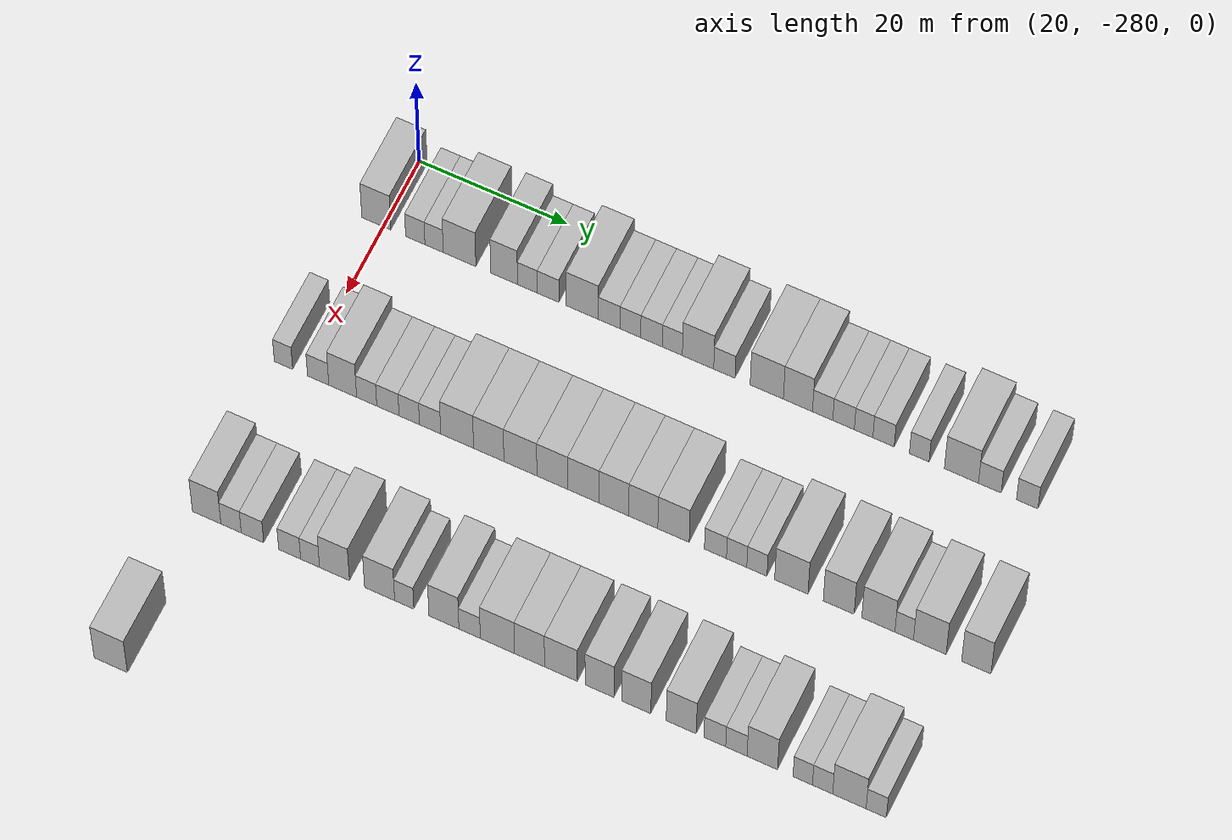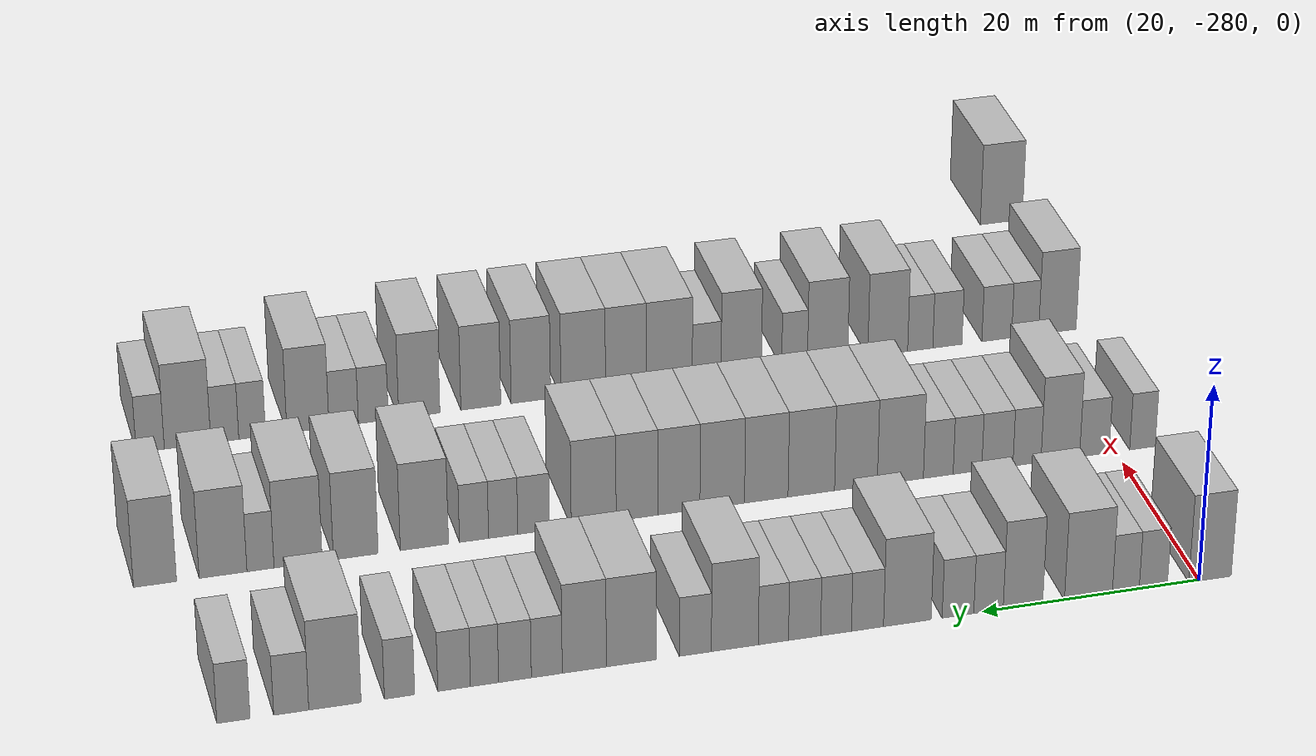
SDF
<sdf version="1.6">
 <world name="default">
  <model name="building_25">
   <static>1</static>
   <pose>25.0000 -280.9960 0 0.000000 0.000000 0.000000</pose>
   <link name="link">
    <pose>0 0 4.50 0 0 0</pose>
    <collision name="collision"><geometry><box><size>10.0000 3.9435 9.0000</size></box></geometry></collision>
    <visual name="visual">
     <cast_shadows>0</cast_shadows>
     <geometry><box><size>10.0000 3.9435 9.0000</size></box></geometry>
     <material>
      <script>
       <uri>model://HANNAS_wall/materials/scripts</uri>
       <uri>model://HANNAS_wall/materials/textures</uri>
       <name>vrc/HANNAS_wall</name>
      </script>
     </material>
    </visual>
   </link>
  </model>
  <model name="building_26">
   <static>1</static>
   <pose>25.0000 -275.7177 0 0.000000 0.000000 0.000000</pose>
   <link name="link">
    <pose>0 0 3.00 0 0 0</pose>
    <collision name="collision"><geometry><box><size>10.0000 2.6130 6.0000</size></box></geometry></collision>
    <visual name="visual">
     <cast_shadows>0</cast_shadows>
     <geometry><box><size>10.0000 2.6130 6.0000</size></box></geometry>
     <material>
      <script>
       <uri>model://HANNAS_wall/materials/scripts</uri>
       <uri>model://HANNAS_wall/materials/textures</uri>
       <name>vrc/HANNAS_wall</name>
      </script>
     </material>
    </visual>
   </link>
  </model>
  <model name="building_27">
   <static>1</static>
   <pose>25.0000 -273.1705 0 0.000000 0.000000 0.000000</pose>
   <link name="link">
    <pose>0 0 3.00 0 0 0</pose>
    <collision name="collision"><geometry><box><size>10.0000 2.4816 6.0000</size></box></geometry></collision>
    <visual name="visual">
     <cast_shadows>0</cast_shadows>
     <geometry><box><size>10.0000 2.4816 6.0000</size></box></geometry>
     <material>
      <script>
       <uri>model://HANNAS_wall/materials/scripts</uri>
       <uri>model://HANNAS_wall/materials/textures</uri>
       <name>vrc/HANNAS_wall</name>
      </script>
     </material>
    </visual>
   </link>
  </model>
  <model name="building_28">
   <static>1</static>
   <pose>25.0000 -269.7255 0 0.000000 0.000000 0.000000</pose>
   <link name="link">
    <pose>0 0 4.50 0 0 0</pose>
    <collision name="collision"><geometry><box><size>10.0000 4.4084 9.0000</size></box></geometry></collision>
    <visual name="visual">
     <cast_shadows>0</cast_shadows>
     <geometry><box><size>10.0000 4.4084 9.0000</size></box></geometry>
     <material>
      <script>
       <uri>model://HANNAS_wall/materials/scripts</uri>
       <uri>model://HANNAS_wall/materials/textures</uri>
       <name>vrc/HANNAS_wall</name>
      </script>
     </material>
    </visual>
   </link>
  </model>
  <model name="building_29">
   <static>1</static>
   <pose>25.0000 -263.7133 0 0.000000 0.000000 0.000000</pose>
   <link name="link">
    <pose>0 0 4.50 0 0 0</pose>
    <collision name="collision"><geometry><box><size>10.0000 3.6160 9.0000</size></box></geometry></collision>
    <visual name="visual">
     <cast_shadows>0</cast_shadows>
     <geometry><box><size>10.0000 3.6160 9.0000</size></box></geometry>
     <material>
      <script>
       <uri>model://HANNAS_wall/materials/scripts</uri>
       <uri>model://HANNAS_wall/materials/textures</uri>
       <name>vrc/HANNAS_wall</name>
      </script>
     </material>
    </visual>
   </link>
  </model>
  <model name="building_30">
   <static>1</static>
   <pose>25.0000 -260.5666 0 0.000000 0.000000 0.000000</pose>
   <link name="link">
    <pose>0 0 3.00 0 0 0</pose>
    <collision name="collision"><geometry><box><size>10.0000 2.6774 6.0000</size></box></geometry></collision>
    <visual name="visual">
     <cast_shadows>0</cast_shadows>
     <geometry><box><size>10.0000 2.6774 6.0000</size></box></geometry>
     <material>
      <script>
       <uri>model://HANNAS_wall/materials/scripts</uri>
       <uri>model://HANNAS_wall/materials/textures</uri>
       <name>vrc/HANNAS_wall</name>
      </script>
     </material>
    </visual>
   </link>
  </model>
  <model name="building_31">
   <static>1</static>
   <pose>25.0000 -257.7888 0 0.000000 0.000000 0.000000</pose>
   <link name="link">
    <pose>0 0 3.00 0 0 0</pose>
    <collision name="collision"><geometry><box><size>10.0000 2.8781 6.0000</size></box></geometry></collision>
    <visual name="visual">
     <cast_shadows>0</cast_shadows>
     <geometry><box><size>10.0000 2.8781 6.0000</size></box></geometry>
     <material>
      <script>
       <uri>model://HANNAS_wall/materials/scripts</uri>
       <uri>model://HANNAS_wall/materials/textures</uri>
       <name>vrc/HANNAS_wall</name>
      </script>
     </material>
    </visual>
   </link>
  </model>
  <model name="building_32">
   <static>1</static>
   <pose>25.0000 -253.1978 0 0.000000 0.000000 0.000000</pose>
   <link name="link">
    <pose>0 0 4.50 0 0 0</pose>
    <collision name="collision"><geometry><box><size>10.0000 4.3039 9.0000</size></box></geometry></collision>
    <visual name="visual">
     <cast_shadows>0</cast_shadows>
     <geometry><box><size>10.0000 4.3039 9.0000</size></box></geometry>
     <material>
      <script>
       <uri>model://HANNAS_wall/materials/scripts</uri>
       <uri>model://HANNAS_wall/materials/textures</uri>
       <name>vrc/HANNAS_wall</name>
      </script>
     </material>
    </visual>
   </link>
  </model>
  <model name="building_33">
   <static>1</static>
   <pose>25.0000 -249.5986 0 0.000000 0.000000 0.000000</pose>
   <link name="link">
    <pose>0 0 3.00 0 0 0</pose>
    <collision name="collision"><geometry><box><size>10.0000 2.8944 6.0000</size></box></geometry></collision>
    <visual name="visual">
     <cast_shadows>0</cast_shadows>
     <geometry><box><size>10.0000 2.8944 6.0000</size></box></geometry>
     <material>
      <script>
       <uri>model://HANNAS_wall/materials/scripts</uri>
       <uri>model://HANNAS_wall/materials/textures</uri>
       <name>vrc/HANNAS_wall</name>
      </script>
     </material>
    </visual>
   </link>
  </model>
  <model name="building_34">
   <static>1</static>
   <pose>25.0000 -246.7691 0 0.000000 0.000000 0.000000</pose>
   <link name="link">
    <pose>0 0 3.00 0 0 0</pose>
    <collision name="collision"><geometry><box><size>10.0000 2.7646 6.0000</size></box></geometry></collision>
    <visual name="visual">
     <cast_shadows>0</cast_shadows>
     <geometry><box><size>10.0000 2.7646 6.0000</size></box></geometry>
     <material>
      <script>
       <uri>model://HANNAS_wall/materials/scripts</uri>
       <uri>model://HANNAS_wall/materials/textures</uri>
       <name>vrc/HANNAS_wall</name>
      </script>
     </material>
    </visual>
   </link>
  </model>
  <model name="building_35">
   <static>1</static>
   <pose>25.0000 -243.9515 0 0.000000 0.000000 0.000000</pose>
   <link name="link">
    <pose>0 0 3.00 0 0 0</pose>
    <collision name="collision"><geometry><box><size>10.0000 2.8706 6.0000</size></box></geometry></collision>
    <visual name="visual">
     <cast_shadows>0</cast_shadows>
     <geometry><box><size>10.0000 2.8706 6.0000</size></box></geometry>
     <material>
      <script>
       <uri>model://HANNAS_wall/materials/scripts</uri>
       <uri>model://HANNAS_wall/materials/textures</uri>
       <name>vrc/HANNAS_wall</name>
      </script>
     </material>
    </visual>
   </link>
  </model>
  <model name="building_36">
   <static>1</static>
   <pose>25.0000 -241.1703 0 0.000000 0.000000 0.000000</pose>
   <link name="link">
    <pose>0 0 3.00 0 0 0</pose>
    <collision name="collision"><geometry><box><size>10.0000 2.6919 6.0000</size></box></geometry></collision>
    <visual name="visual">
     <cast_shadows>0</cast_shadows>
     <geometry><box><size>10.0000 2.6919 6.0000</size></box></geometry>
     <material>
      <script>
       <uri>model://HANNAS_wall/materials/scripts</uri>
       <uri>model://HANNAS_wall/materials/textures</uri>
       <name>vrc/HANNAS_wall</name>
      </script>
     </material>
    </visual>
   </link>
  </model>
  <model name="building_37">
   <static>1</static>
   <pose>25.0000 -237.7380 0 0.000000 0.000000 0.000000</pose>
   <link name="link">
    <pose>0 0 4.50 0 0 0</pose>
    <collision name="collision"><geometry><box><size>10.0000 4.1728 9.0000</size></box></geometry></collision>
    <visual name="visual">
     <cast_shadows>0</cast_shadows>
     <geometry><box><size>10.0000 4.1728 9.0000</size></box></geometry>
     <material>
      <script>
       <uri>model://HANNAS_wall/materials/scripts</uri>
       <uri>model://HANNAS_wall/materials/textures</uri>
       <name>vrc/HANNAS_wall</name>
      </script>
     </material>
    </visual>
   </link>
  </model>
  <model name="building_38">
   <static>1</static>
   <pose>25.0000 -234.2288 0 0.000000 0.000000 0.000000</pose>
   <link name="link">
    <pose>0 0 3.00 0 0 0</pose>
    <collision name="collision"><geometry><box><size>10.0000 2.8456 6.0000</size></box></geometry></collision>
    <visual name="visual">
     <cast_shadows>0</cast_shadows>
     <geometry><box><size>10.0000 2.8456 6.0000</size></box></geometry>
     <material>
      <script>
       <uri>model://HANNAS_wall/materials/scripts</uri>
       <uri>model://HANNAS_wall/materials/textures</uri>
       <name>vrc/HANNAS_wall</name>
      </script>
     </material>
    </visual>
   </link>
  </model>
  <model name="building_39">
   <static>1</static>
   <pose>25.0000 -228.5989 0 0.000000 0.000000 0.000000</pose>
   <link name="link">
    <pose>0 0 4.50 0 0 0</pose>
    <collision name="collision"><geometry><box><size>10.0000 4.4142 9.0000</size></box></geometry></collision>
    <visual name="visual">
     <cast_shadows>0</cast_shadows>
     <geometry><box><size>10.0000 4.4142 9.0000</size></box></geometry>
     <material>
      <script>
       <uri>model://HANNAS_wall/materials/scripts</uri>
       <uri>model://HANNAS_wall/materials/textures</uri>
       <name>vrc/HANNAS_wall</name>
      </script>
     </material>
    </visual>
   </link>
  </model>
  <model name="building_40">
   <static>1</static>
   <pose>25.0000 -224.4616 0 0.000000 0.000000 0.000000</pose>
   <link name="link">
    <pose>0 0 4.50 0 0 0</pose>
    <collision name="collision"><geometry><box><size>10.0000 3.8603 9.0000</size></box></geometry></collision>
    <visual name="visual">
     <cast_shadows>0</cast_shadows>
     <geometry><box><size>10.0000 3.8603 9.0000</size></box></geometry>
     <material>
      <script>
       <uri>model://HANNAS_wall/materials/scripts</uri>
       <uri>model://HANNAS_wall/materials/textures</uri>
       <name>vrc/HANNAS_wall</name>
      </script>
     </material>
    </visual>
   </link>
  </model>
  <model name="building_41">
   <static>1</static>
   <pose>25.0000 -221.1838 0 0.000000 0.000000 0.000000</pose>
   <link name="link">
    <pose>0 0 3.00 0 0 0</pose>
    <collision name="collision"><geometry><box><size>10.0000 2.6952 6.0000</size></box></geometry></collision>
    <visual name="visual">
     <cast_shadows>0</cast_shadows>
     <geometry><box><size>10.0000 2.6952 6.0000</size></box></geometry>
     <material>
      <script>
       <uri>model://HANNAS_wall/materials/scripts</uri>
       <uri>model://HANNAS_wall/materials/textures</uri>
       <name>vrc/HANNAS_wall</name>
      </script>
     </material>
    </visual>
   </link>
  </model>
  <model name="building_42">
   <static>1</static>
   <pose>25.0000 -218.4141 0 0.000000 0.000000 0.000000</pose>
   <link name="link">
    <pose>0 0 3.00 0 0 0</pose>
    <collision name="collision"><geometry><box><size>10.0000 2.8441 6.0000</size></box></geometry></collision>
    <visual name="visual">
     <cast_shadows>0</cast_shadows>
     <geometry><box><size>10.0000 2.8441 6.0000</size></box></geometry>
     <material>
      <script>
       <uri>model://HANNAS_wall/materials/scripts</uri>
       <uri>model://HANNAS_wall/materials/textures</uri>
       <name>vrc/HANNAS_wall</name>
      </script>
     </material>
    </visual>
   </link>
  </model>
  <model name="building_43">
   <static>1</static>
   <pose>25.0000 -215.7694 0 0.000000 0.000000 0.000000</pose>
   <link name="link">
    <pose>0 0 3.00 0 0 0</pose>
    <collision name="collision"><geometry><box><size>10.0000 2.4454 6.0000</size></box></geometry></collision>
    <visual name="visual">
     <cast_shadows>0</cast_shadows>
     <geometry><box><size>10.0000 2.4454 6.0000</size></box></geometry>
     <material>
      <script>
       <uri>model://HANNAS_wall/materials/scripts</uri>
       <uri>model://HANNAS_wall/materials/textures</uri>
       <name>vrc/HANNAS_wall</name>
      </script>
     </material>
    </visual>
   </link>
  </model>
  <model name="building_44">
   <static>1</static>
   <pose>25.0000 -213.1386 0 0.000000 0.000000 0.000000</pose>
   <link name="link">
    <pose>0 0 3.00 0 0 0</pose>
    <collision name="collision"><geometry><box><size>10.0000 2.8161 6.0000</size></box></geometry></collision>
    <visual name="visual">
     <cast_shadows>0</cast_shadows>
     <geometry><box><size>10.0000 2.8161 6.0000</size></box></geometry>
     <material>
      <script>
       <uri>model://HANNAS_wall/materials/scripts</uri>
       <uri>model://HANNAS_wall/materials/textures</uri>
       <name>vrc/HANNAS_wall</name>
      </script>
     </material>
    </visual>
   </link>
  </model>
  <model name="building_45">
   <static>1</static>
   <pose>25.0000 -208.4304 0 0.000000 0.000000 0.000000</pose>
   <link name="link">
    <pose>0 0 3.00 0 0 0</pose>
    <collision name="collision"><geometry><box><size>10.0000 2.6004 6.0000</size></box></geometry></collision>
    <visual name="visual">
     <cast_shadows>0</cast_shadows>
     <geometry><box><size>10.0000 2.6004 6.0000</size></box></geometry>
     <material>
      <script>
       <uri>model://HANNAS_wall/materials/scripts</uri>
       <uri>model://HANNAS_wall/materials/textures</uri>
       <name>vrc/HANNAS_wall</name>
      </script>
     </material>
    </visual>
   </link>
  </model>
  <model name="building_46">
   <static>1</static>
   <pose>25.0000 -202.8944 0 0.000000 0.000000 0.000000</pose>
   <link name="link">
    <pose>0 0 4.50 0 0 0</pose>
    <collision name="collision"><geometry><box><size>10.0000 4.4716 9.0000</size></box></geometry></collision>
    <visual name="visual">
     <cast_shadows>0</cast_shadows>
     <geometry><box><size>10.0000 4.4716 9.0000</size></box></geometry>
     <material>
      <script>
       <uri>model://HANNAS_wall/materials/scripts</uri>
       <uri>model://HANNAS_wall/materials/textures</uri>
       <name>vrc/HANNAS_wall</name>
      </script>
     </material>
    </visual>
   </link>
  </model>
  <model name="building_47">
   <static>1</static>
   <pose>25.0000 -199.1657 0 0.000000 0.000000 0.000000</pose>
   <link name="link">
    <pose>0 0 3.00 0 0 0</pose>
    <collision name="collision"><geometry><box><size>10.0000 2.9857 6.0000</size></box></geometry></collision>
    <visual name="visual">
     <cast_shadows>0</cast_shadows>
     <geometry><box><size>10.0000 2.9857 6.0000</size></box></geometry>
     <material>
      <script>
       <uri>model://HANNAS_wall/materials/scripts</uri>
       <uri>model://HANNAS_wall/materials/textures</uri>
       <name>vrc/HANNAS_wall</name>
      </script>
     </material>
    </visual>
   </link>
  </model>
  <model name="building_48">
   <static>1</static>
   <pose>25.0000 -194.2675 0 0.000000 0.000000 0.000000</pose>
   <link name="link">
    <pose>0 0 3.00 0 0 0</pose>
    <collision name="collision"><geometry><box><size>10.0000 2.8106 6.0000</size></box></geometry></collision>
    <visual name="visual">
     <cast_shadows>0</cast_shadows>
     <geometry><box><size>10.0000 2.8106 6.0000</size></box></geometry>
     <material>
      <script>
       <uri>model://HANNAS_wall/materials/scripts</uri>
       <uri>model://HANNAS_wall/materials/textures</uri>
       <name>vrc/HANNAS_wall</name>
      </script>
     </material>
    </visual>
   </link>
  </model>
  <model name="building_224">
   <static>1</static>
   <pose>47.0000 -282.5745 0 0.000000 0.000000 0.000000</pose>
   <link name="link">
    <pose>0 0 3.00 0 0 0</pose>
    <collision name="collision"><geometry><box><size>10.0000 2.4802 6.0000</size></box></geometry></collision>
    <visual name="visual">
     <cast_shadows>0</cast_shadows>
     <geometry><box><size>10.0000 2.4802 6.0000</size></box></geometry>
     <material>
      <script>
       <uri>model://HANNAS_wall/materials/scripts</uri>
       <uri>model://HANNAS_wall/materials/textures</uri>
       <name>vrc/HANNAS_wall</name>
      </script>
     </material>
    </visual>
   </link>
  </model>
  <model name="building_225">
   <static>1</static>
   <pose>47.0000 -277.9046 0 0.000000 0.000000 0.000000</pose>
   <link name="link">
    <pose>0 0 3.00 0 0 0</pose>
    <collision name="collision"><geometry><box><size>10.0000 2.8594 6.0000</size></box></geometry></collision>
    <visual name="visual">
     <cast_shadows>0</cast_shadows>
     <geometry><box><size>10.0000 2.8594 6.0000</size></box></geometry>
     <material>
      <script>
       <uri>model://HANNAS_wall/materials/scripts</uri>
       <uri>model://HANNAS_wall/materials/textures</uri>
       <name>vrc/HANNAS_wall</name>
      </script>
     </material>
    </visual>
   </link>
  </model>
  <model name="building_226">
   <static>1</static>
   <pose>47.0000 -274.6054 0 0.000000 0.000000 0.000000</pose>
   <link name="link">
    <pose>0 0 4.50 0 0 0</pose>
    <collision name="collision"><geometry><box><size>10.0000 3.7390 9.0000</size></box></geometry></collision>
    <visual name="visual">
     <cast_shadows>0</cast_shadows>
     <geometry><box><size>10.0000 3.7390 9.0000</size></box></geometry>
     <material>
      <script>
       <uri>model://HANNAS_wall/materials/scripts</uri>
       <uri>model://HANNAS_wall/materials/textures</uri>
       <name>vrc/HANNAS_wall</name>
      </script>
     </material>
    </visual>
   </link>
  </model>
  <model name="building_227">
   <static>1</static>
   <pose>47.0000 -271.3867 0 0.000000 0.000000 0.000000</pose>
   <link name="link">
    <pose>0 0 3.00 0 0 0</pose>
    <collision name="collision"><geometry><box><size>10.0000 2.6985 6.0000</size></box></geometry></collision>
    <visual name="visual">
     <cast_shadows>0</cast_shadows>
     <geometry><box><size>10.0000 2.6985 6.0000</size></box></geometry>
     <material>
      <script>
       <uri>model://HANNAS_wall/materials/scripts</uri>
       <uri>model://HANNAS_wall/materials/textures</uri>
       <name>vrc/HANNAS_wall</name>
      </script>
     </material>
    </visual>
   </link>
  </model>
  <model name="building_228">
   <static>1</static>
   <pose>47.0000 -268.5423 0 0.000000 0.000000 0.000000</pose>
   <link name="link">
    <pose>0 0 3.00 0 0 0</pose>
    <collision name="collision"><geometry><box><size>10.0000 2.9903 6.0000</size></box></geometry></collision>
    <visual name="visual">
     <cast_shadows>0</cast_shadows>
     <geometry><box><size>10.0000 2.9903 6.0000</size></box></geometry>
     <material>
      <script>
       <uri>model://HANNAS_wall/materials/scripts</uri>
       <uri>model://HANNAS_wall/materials/textures</uri>
       <name>vrc/HANNAS_wall</name>
      </script>
     </material>
    </visual>
   </link>
  </model>
  <model name="building_229">
   <static>1</static>
   <pose>47.0000 -265.6804 0 0.000000 0.000000 0.000000</pose>
   <link name="link">
    <pose>0 0 3.00 0 0 0</pose>
    <collision name="collision"><geometry><box><size>10.0000 2.7334 6.0000</size></box></geometry></collision>
    <visual name="visual">
     <cast_shadows>0</cast_shadows>
     <geometry><box><size>10.0000 2.7334 6.0000</size></box></geometry>
     <material>
      <script>
       <uri>model://HANNAS_wall/materials/scripts</uri>
       <uri>model://HANNAS_wall/materials/textures</uri>
       <name>vrc/HANNAS_wall</name>
      </script>
     </material>
    </visual>
   </link>
  </model>
  <model name="building_230">
   <static>1</static>
   <pose>47.0000 -262.8913 0 0.000000 0.000000 0.000000</pose>
   <link name="link">
    <pose>0 0 3.00 0 0 0</pose>
    <collision name="collision"><geometry><box><size>10.0000 2.8448 6.0000</size></box></geometry></collision>
    <visual name="visual">
     <cast_shadows>0</cast_shadows>
     <geometry><box><size>10.0000 2.8448 6.0000</size></box></geometry>
     <material>
      <script>
       <uri>model://HANNAS_wall/materials/scripts</uri>
       <uri>model://HANNAS_wall/materials/textures</uri>
       <name>vrc/HANNAS_wall</name>
      </script>
     </material>
    </visual>
   </link>
  </model>
  <model name="building_231">
   <static>1</static>
   <pose>47.0000 -259.2773 0 0.000000 0.000000 0.000000</pose>
   <link name="link">
    <pose>0 0 4.50 0 0 0</pose>
    <collision name="collision"><geometry><box><size>10.0000 4.3831 9.0000</size></box></geometry></collision>
    <visual name="visual">
     <cast_shadows>0</cast_shadows>
     <geometry><box><size>10.0000 4.3831 9.0000</size></box></geometry>
     <material>
      <script>
       <uri>model://HANNAS_wall/materials/scripts</uri>
       <uri>model://HANNAS_wall/materials/textures</uri>
       <name>vrc/HANNAS_wall</name>
      </script>
     </material>
    </visual>
   </link>
  </model>
  <model name="building_232">
   <static>1</static>
   <pose>47.0000 -255.0653 0 0.000000 0.000000 0.000000</pose>
   <link name="link">
    <pose>0 0 4.50 0 0 0</pose>
    <collision name="collision"><geometry><box><size>10.0000 4.0408 9.0000</size></box></geometry></collision>
    <visual name="visual">
     <cast_shadows>0</cast_shadows>
     <geometry><box><size>10.0000 4.0408 9.0000</size></box></geometry>
     <material>
      <script>
       <uri>model://HANNAS_wall/materials/scripts</uri>
       <uri>model://HANNAS_wall/materials/textures</uri>
       <name>vrc/HANNAS_wall</name>
      </script>
     </material>
    </visual>
   </link>
  </model>
  <model name="building_233">
   <static>1</static>
   <pose>47.0000 -250.8517 0 0.000000 0.000000 0.000000</pose>
   <link name="link">
    <pose>0 0 4.50 0 0 0</pose>
    <collision name="collision"><geometry><box><size>10.0000 4.3865 9.0000</size></box></geometry></collision>
    <visual name="visual">
     <cast_shadows>0</cast_shadows>
     <geometry><box><size>10.0000 4.3865 9.0000</size></box></geometry>
     <material>
      <script>
       <uri>model://HANNAS_wall/materials/scripts</uri>
       <uri>model://HANNAS_wall/materials/textures</uri>
       <name>vrc/HANNAS_wall</name>
      </script>
     </material>
    </visual>
   </link>
  </model>
  <model name="building_234">
   <static>1</static>
   <pose>47.0000 -246.6205 0 0.000000 0.000000 0.000000</pose>
   <link name="link">
    <pose>0 0 4.50 0 0 0</pose>
    <collision name="collision"><geometry><box><size>10.0000 4.0758 9.0000</size></box></geometry></collision>
    <visual name="visual">
     <cast_shadows>0</cast_shadows>
     <geometry><box><size>10.0000 4.0758 9.0000</size></box></geometry>
     <material>
      <script>
       <uri>model://HANNAS_wall/materials/scripts</uri>
       <uri>model://HANNAS_wall/materials/textures</uri>
       <name>vrc/HANNAS_wall</name>
      </script>
     </material>
    </visual>
   </link>
  </model>
  <model name="building_235">
   <static>1</static>
   <pose>47.0000 -242.4970 0 0.000000 0.000000 0.000000</pose>
   <link name="link">
    <pose>0 0 4.50 0 0 0</pose>
    <collision name="collision"><geometry><box><size>10.0000 4.1711 9.0000</size></box></geometry></collision>
    <visual name="visual">
     <cast_shadows>0</cast_shadows>
     <geometry><box><size>10.0000 4.1711 9.0000</size></box></geometry>
     <material>
      <script>
       <uri>model://HANNAS_wall/materials/scripts</uri>
       <uri>model://HANNAS_wall/materials/textures</uri>
       <name>vrc/HANNAS_wall</name>
      </script>
     </material>
    </visual>
   </link>
  </model>
  <model name="building_236">
   <static>1</static>
   <pose>47.0000 -238.4474 0 0.000000 0.000000 0.000000</pose>
   <link name="link">
    <pose>0 0 4.50 0 0 0</pose>
    <collision name="collision"><geometry><box><size>10.0000 3.9280 9.0000</size></box></geometry></collision>
    <visual name="visual">
     <cast_shadows>0</cast_shadows>
     <geometry><box><size>10.0000 3.9280 9.0000</size></box></geometry>
     <material>
      <script>
       <uri>model://HANNAS_wall/materials/scripts</uri>
       <uri>model://HANNAS_wall/materials/textures</uri>
       <name>vrc/HANNAS_wall</name>
      </script>
     </material>
    </visual>
   </link>
  </model>
  <model name="building_237">
   <static>1</static>
   <pose>47.0000 -234.5632 0 0.000000 0.000000 0.000000</pose>
   <link name="link">
    <pose>0 0 4.50 0 0 0</pose>
    <collision name="collision"><geometry><box><size>10.0000 3.8406 9.0000</size></box></geometry></collision>
    <visual name="visual">
     <cast_shadows>0</cast_shadows>
     <geometry><box><size>10.0000 3.8406 9.0000</size></box></geometry>
     <material>
      <script>
       <uri>model://HANNAS_wall/materials/scripts</uri>
       <uri>model://HANNAS_wall/materials/textures</uri>
       <name>vrc/HANNAS_wall</name>
      </script>
     </material>
    </visual>
   </link>
  </model>
  <model name="building_238">
   <static>1</static>
   <pose>47.0000 -230.5738 0 0.000000 0.000000 0.000000</pose>
   <link name="link">
    <pose>0 0 4.50 0 0 0</pose>
    <collision name="collision"><geometry><box><size>10.0000 4.1381 9.0000</size></box></geometry></collision>
    <visual name="visual">
     <cast_shadows>0</cast_shadows>
     <geometry><box><size>10.0000 4.1381 9.0000</size></box></geometry>
     <material>
      <script>
       <uri>model://HANNAS_wall/materials/scripts</uri>
       <uri>model://HANNAS_wall/materials/textures</uri>
       <name>vrc/HANNAS_wall</name>
      </script>
     </material>
    </visual>
   </link>
  </model>
  <model name="building_239">
   <static>1</static>
   <pose>47.0000 -225.0542 0 0.000000 0.000000 0.000000</pose>
   <link name="link">
    <pose>0 0 3.00 0 0 0</pose>
    <collision name="collision"><geometry><box><size>10.0000 2.9010 6.0000</size></box></geometry></collision>
    <visual name="visual">
     <cast_shadows>0</cast_shadows>
     <geometry><box><size>10.0000 2.9010 6.0000</size></box></geometry>
     <material>
      <script>
       <uri>model://HANNAS_wall/materials/scripts</uri>
       <uri>model://HANNAS_wall/materials/textures</uri>
       <name>vrc/HANNAS_wall</name>
      </script>
     </material>
    </visual>
   </link>
  </model>
  <model name="building_240">
   <static>1</static>
   <pose>47.0000 -222.2689 0 0.000000 0.000000 0.000000</pose>
   <link name="link">
    <pose>0 0 3.00 0 0 0</pose>
    <collision name="collision"><geometry><box><size>10.0000 2.6696 6.0000</size></box></geometry></collision>
    <visual name="visual">
     <cast_shadows>0</cast_shadows>
     <geometry><box><size>10.0000 2.6696 6.0000</size></box></geometry>
     <material>
      <script>
       <uri>model://HANNAS_wall/materials/scripts</uri>
       <uri>model://HANNAS_wall/materials/textures</uri>
       <name>vrc/HANNAS_wall</name>
      </script>
     </material>
    </visual>
   </link>
  </model>
  <model name="building_241">
   <static>1</static>
   <pose>47.0000 -219.6069 0 0.000000 0.000000 0.000000</pose>
   <link name="link">
    <pose>0 0 3.00 0 0 0</pose>
    <collision name="collision"><geometry><box><size>10.0000 2.6545 6.0000</size></box></geometry></collision>
    <visual name="visual">
     <cast_shadows>0</cast_shadows>
     <geometry><box><size>10.0000 2.6545 6.0000</size></box></geometry>
     <material>
      <script>
       <uri>model://HANNAS_wall/materials/scripts</uri>
       <uri>model://HANNAS_wall/materials/textures</uri>
       <name>vrc/HANNAS_wall</name>
      </script>
     </material>
    </visual>
   </link>
  </model>
  <model name="building_242">
   <static>1</static>
   <pose>47.0000 -215.0941 0 0.000000 0.000000 0.000000</pose>
   <link name="link">
    <pose>0 0 4.50 0 0 0</pose>
    <collision name="collision"><geometry><box><size>10.0000 4.3712 9.0000</size></box></geometry></collision>
    <visual name="visual">
     <cast_shadows>0</cast_shadows>
     <geometry><box><size>10.0000 4.3712 9.0000</size></box></geometry>
     <material>
      <script>
       <uri>model://HANNAS_wall/materials/scripts</uri>
       <uri>model://HANNAS_wall/materials/textures</uri>
       <name>vrc/HANNAS_wall</name>
      </script>
     </material>
    </visual>
   </link>
  </model>
  <model name="building_243">
   <static>1</static>
   <pose>47.0000 -208.8919 0 0.000000 0.000000 0.000000</pose>
   <link name="link">
    <pose>0 0 4.50 0 0 0</pose>
    <collision name="collision"><geometry><box><size>10.0000 4.0332 9.0000</size></box></geometry></collision>
    <visual name="visual">
     <cast_shadows>0</cast_shadows>
     <geometry><box><size>10.0000 4.0332 9.0000</size></box></geometry>
     <material>
      <script>
       <uri>model://HANNAS_wall/materials/scripts</uri>
       <uri>model://HANNAS_wall/materials/textures</uri>
       <name>vrc/HANNAS_wall</name>
      </script>
     </material>
    </visual>
   </link>
  </model>
  <model name="building_244">
   <static>1</static>
   <pose>47.0000 -203.7168 0 0.000000 0.000000 0.000000</pose>
   <link name="link">
    <pose>0 0 4.50 0 0 0</pose>
    <collision name="collision"><geometry><box><size>10.0000 4.3169 9.0000</size></box></geometry></collision>
    <visual name="visual">
     <cast_shadows>0</cast_shadows>
     <geometry><box><size>10.0000 4.3169 9.0000</size></box></geometry>
     <material>
      <script>
       <uri>model://HANNAS_wall/materials/scripts</uri>
       <uri>model://HANNAS_wall/materials/textures</uri>
       <name>vrc/HANNAS_wall</name>
      </script>
     </material>
    </visual>
   </link>
  </model>
  <model name="building_245">
   <static>1</static>
   <pose>47.0000 -200.3511 0 0.000000 0.000000 0.000000</pose>
   <link name="link">
    <pose>0 0 3.00 0 0 0</pose>
    <collision name="collision"><geometry><box><size>10.0000 2.4145 6.0000</size></box></geometry></collision>
    <visual name="visual">
     <cast_shadows>0</cast_shadows>
     <geometry><box><size>10.0000 2.4145 6.0000</size></box></geometry>
     <material>
      <script>
       <uri>model://HANNAS_wall/materials/scripts</uri>
       <uri>model://HANNAS_wall/materials/textures</uri>
       <name>vrc/HANNAS_wall</name>
      </script>
     </material>
    </visual>
   </link>
  </model>
  <model name="building_246">
   <static>1</static>
   <pose>47.0000 -197.0173 0 0.000000 0.000000 0.000000</pose>
   <link name="link">
    <pose>0 0 4.50 0 0 0</pose>
    <collision name="collision"><geometry><box><size>10.0000 4.2533 9.0000</size></box></geometry></collision>
    <visual name="visual">
     <cast_shadows>0</cast_shadows>
     <geometry><box><size>10.0000 4.2533 9.0000</size></box></geometry>
     <material>
      <script>
       <uri>model://HANNAS_wall/materials/scripts</uri>
       <uri>model://HANNAS_wall/materials/textures</uri>
       <name>vrc/HANNAS_wall</name>
      </script>
     </material>
    </visual>
   </link>
  </model>
  <model name="building_247">
   <static>1</static>
   <pose>47.0000 -190.9872 0 0.000000 0.000000 0.000000</pose>
   <link name="link">
    <pose>0 0 4.50 0 0 0</pose>
    <collision name="collision"><geometry><box><size>10.0000 3.8068 9.0000</size></box></geometry></collision>
    <visual name="visual">
     <cast_shadows>0</cast_shadows>
     <geometry><box><size>10.0000 3.8068 9.0000</size></box></geometry>
     <material>
      <script>
       <uri>model://HANNAS_wall/materials/scripts</uri>
       <uri>model://HANNAS_wall/materials/textures</uri>
       <name>vrc/HANNAS_wall</name>
      </script>
     </material>
    </visual>
   </link>
  </model>
  <model name="building_425">
   <static>1</static>
   <pose>69.0000 -281.7741 0 0.000000 0.000000 0.000000</pose>
   <link name="link">
    <pose>0 0 4.50 0 0 0</pose>
    <collision name="collision"><geometry><box><size>10.0000 3.8057 9.0000</size></box></geometry></collision>
    <visual name="visual">
     <cast_shadows>0</cast_shadows>
     <geometry><box><size>10.0000 3.8057 9.0000</size></box></geometry>
     <material>
      <script>
       <uri>model://HANNAS_wall/materials/scripts</uri>
       <uri>model://HANNAS_wall/materials/textures</uri>
       <name>vrc/HANNAS_wall</name>
      </script>
     </material>
    </visual>
   </link>
  </model>
  <model name="building_426">
   <static>1</static>
   <pose>69.0000 -278.5098 0 0.000000 0.000000 0.000000</pose>
   <link name="link">
    <pose>0 0 3.00 0 0 0</pose>
    <collision name="collision"><geometry><box><size>10.0000 2.7230 6.0000</size></box></geometry></collision>
    <visual name="visual">
     <cast_shadows>0</cast_shadows>
     <geometry><box><size>10.0000 2.7230 6.0000</size></box></geometry>
     <material>
      <script>
       <uri>model://HANNAS_wall/materials/scripts</uri>
       <uri>model://HANNAS_wall/materials/textures</uri>
       <name>vrc/HANNAS_wall</name>
      </script>
     </material>
    </visual>
   </link>
  </model>
  <model name="building_427">
   <static>1</static>
   <pose>69.0000 -275.6507 0 0.000000 0.000000 0.000000</pose>
   <link name="link">
    <pose>0 0 3.00 0 0 0</pose>
    <collision name="collision"><geometry><box><size>10.0000 2.9952 6.0000</size></box></geometry></collision>
    <visual name="visual">
     <cast_shadows>0</cast_shadows>
     <geometry><box><size>10.0000 2.9952 6.0000</size></box></geometry>
     <material>
      <script>
       <uri>model://HANNAS_wall/materials/scripts</uri>
       <uri>model://HANNAS_wall/materials/textures</uri>
       <name>vrc/HANNAS_wall</name>
      </script>
     </material>
    </visual>
   </link>
  </model>
  <model name="building_428">
   <static>1</static>
   <pose>69.0000 -270.6917 0 0.000000 0.000000 0.000000</pose>
   <link name="link">
    <pose>0 0 3.00 0 0 0</pose>
    <collision name="collision"><geometry><box><size>10.0000 2.9227 6.0000</size></box></geometry></collision>
    <visual name="visual">
     <cast_shadows>0</cast_shadows>
     <geometry><box><size>10.0000 2.9227 6.0000</size></box></geometry>
     <material>
      <script>
       <uri>model://HANNAS_wall/materials/scripts</uri>
       <uri>model://HANNAS_wall/materials/textures</uri>
       <name>vrc/HANNAS_wall</name>
      </script>
     </material>
    </visual>
   </link>
  </model>
  <model name="building_429">
   <static>1</static>
   <pose>69.0000 -267.9727 0 0.000000 0.000000 0.000000</pose>
   <link name="link">
    <pose>0 0 3.00 0 0 0</pose>
    <collision name="collision"><geometry><box><size>10.0000 2.5155 6.0000</size></box></geometry></collision>
    <visual name="visual">
     <cast_shadows>0</cast_shadows>
     <geometry><box><size>10.0000 2.5155 6.0000</size></box></geometry>
     <material>
      <script>
       <uri>model://HANNAS_wall/materials/scripts</uri>
       <uri>model://HANNAS_wall/materials/textures</uri>
       <name>vrc/HANNAS_wall</name>
      </script>
     </material>
    </visual>
   </link>
  </model>
  <model name="building_430">
   <static>1</static>
   <pose>69.0000 -264.7276 0 0.000000 0.000000 0.000000</pose>
   <link name="link">
    <pose>0 0 4.50 0 0 0</pose>
    <collision name="collision"><geometry><box><size>10.0000 3.9746 9.0000</size></box></geometry></collision>
    <visual name="visual">
     <cast_shadows>0</cast_shadows>
     <geometry><box><size>10.0000 3.9746 9.0000</size></box></geometry>
     <material>
      <script>
       <uri>model://HANNAS_wall/materials/scripts</uri>
       <uri>model://HANNAS_wall/materials/textures</uri>
       <name>vrc/HANNAS_wall</name>
      </script>
     </material>
    </visual>
   </link>
  </model>
  <model name="building_431">
   <static>1</static>
   <pose>69.0000 -258.7483 0 0.000000 0.000000 0.000000</pose>
   <link name="link">
    <pose>0 0 4.50 0 0 0</pose>
    <collision name="collision"><geometry><box><size>10.0000 3.9840 9.0000</size></box></geometry></collision>
    <visual name="visual">
     <cast_shadows>0</cast_shadows>
     <geometry><box><size>10.0000 3.9840 9.0000</size></box></geometry>
     <material>
      <script>
       <uri>model://HANNAS_wall/materials/scripts</uri>
       <uri>model://HANNAS_wall/materials/textures</uri>
       <name>vrc/HANNAS_wall</name>
      </script>
     </material>
    </visual>
   </link>
  </model>
  <model name="building_432">
   <static>1</static>
   <pose>69.0000 -255.4885 0 0.000000 0.000000 0.000000</pose>
   <link name="link">
    <pose>0 0 3.00 0 0 0</pose>
    <collision name="collision"><geometry><box><size>10.0000 2.5354 6.0000</size></box></geometry></collision>
    <visual name="visual">
     <cast_shadows>0</cast_shadows>
     <geometry><box><size>10.0000 2.5354 6.0000</size></box></geometry>
     <material>
      <script>
       <uri>model://HANNAS_wall/materials/scripts</uri>
       <uri>model://HANNAS_wall/materials/textures</uri>
       <name>vrc/HANNAS_wall</name>
      </script>
     </material>
    </visual>
   </link>
  </model>
  <model name="building_433">
   <static>1</static>
   <pose>69.0000 -250.2445 0 0.000000 0.000000 0.000000</pose>
   <link name="link">
    <pose>0 0 4.50 0 0 0</pose>
    <collision name="collision"><geometry><box><size>10.0000 3.9526 9.0000</size></box></geometry></collision>
    <visual name="visual">
     <cast_shadows>0</cast_shadows>
     <geometry><box><size>10.0000 3.9526 9.0000</size></box></geometry>
     <material>
      <script>
       <uri>model://HANNAS_wall/materials/scripts</uri>
       <uri>model://HANNAS_wall/materials/textures</uri>
       <name>vrc/HANNAS_wall</name>
      </script>
     </material>
    </visual>
   </link>
  </model>
  <model name="building_434">
   <static>1</static>
   <pose>69.0000 -246.8575 0 0.000000 0.000000 0.000000</pose>
   <link name="link">
    <pose>0 0 3.00 0 0 0</pose>
    <collision name="collision"><geometry><box><size>10.0000 2.8215 6.0000</size></box></geometry></collision>
    <visual name="visual">
     <cast_shadows>0</cast_shadows>
     <geometry><box><size>10.0000 2.8215 6.0000</size></box></geometry>
     <material>
      <script>
       <uri>model://HANNAS_wall/materials/scripts</uri>
       <uri>model://HANNAS_wall/materials/textures</uri>
       <name>vrc/HANNAS_wall</name>
      </script>
     </material>
    </visual>
   </link>
  </model>
  <model name="building_435">
   <static>1</static>
   <pose>69.0000 -243.1994 0 0.000000 0.000000 0.000000</pose>
   <link name="link">
    <pose>0 0 4.50 0 0 0</pose>
    <collision name="collision"><geometry><box><size>10.0000 4.4948 9.0000</size></box></geometry></collision>
    <visual name="visual">
     <cast_shadows>0</cast_shadows>
     <geometry><box><size>10.0000 4.4948 9.0000</size></box></geometry>
     <material>
      <script>
       <uri>model://HANNAS_wall/materials/scripts</uri>
       <uri>model://HANNAS_wall/materials/textures</uri>
       <name>vrc/HANNAS_wall</name>
      </script>
     </material>
    </visual>
   </link>
  </model>
  <model name="building_436">
   <static>1</static>
   <pose>69.0000 -238.9781 0 0.000000 0.000000 0.000000</pose>
   <link name="link">
    <pose>0 0 4.50 0 0 0</pose>
    <collision name="collision"><geometry><box><size>10.0000 3.9476 9.0000</size></box></geometry></collision>
    <visual name="visual">
     <cast_shadows>0</cast_shadows>
     <geometry><box><size>10.0000 3.9476 9.0000</size></box></geometry>
     <material>
      <script>
       <uri>model://HANNAS_wall/materials/scripts</uri>
       <uri>model://HANNAS_wall/materials/textures</uri>
       <name>vrc/HANNAS_wall</name>
      </script>
     </material>
    </visual>
   </link>
  </model>
  <model name="building_437">
   <static>1</static>
   <pose>69.0000 -234.8521 0 0.000000 0.000000 0.000000</pose>
   <link name="link">
    <pose>0 0 4.50 0 0 0</pose>
    <collision name="collision"><geometry><box><size>10.0000 4.3044 9.0000</size></box></geometry></collision>
    <visual name="visual">
     <cast_shadows>0</cast_shadows>
     <geometry><box><size>10.0000 4.3044 9.0000</size></box></geometry>
     <material>
      <script>
       <uri>model://HANNAS_wall/materials/scripts</uri>
       <uri>model://HANNAS_wall/materials/textures</uri>
       <name>vrc/HANNAS_wall</name>
      </script>
     </material>
    </visual>
   </link>
  </model>
  <model name="building_438">
   <static>1</static>
   <pose>69.0000 -229.8046 0 0.000000 0.000000 0.000000</pose>
   <link name="link">
    <pose>0 0 4.50 0 0 0</pose>
    <collision name="collision"><geometry><box><size>10.0000 3.7906 9.0000</size></box></geometry></collision>
    <visual name="visual">
     <cast_shadows>0</cast_shadows>
     <geometry><box><size>10.0000 3.7906 9.0000</size></box></geometry>
     <material>
      <script>
       <uri>model://HANNAS_wall/materials/scripts</uri>
       <uri>model://HANNAS_wall/materials/textures</uri>
       <name>vrc/HANNAS_wall</name>
      </script>
     </material>
    </visual>
   </link>
  </model>
  <model name="building_439">
   <static>1</static>
   <pose>69.0000 -225.0025 0 0.000000 0.000000 0.000000</pose>
   <link name="link">
    <pose>0 0 4.50 0 0 0</pose>
    <collision name="collision"><geometry><box><size>10.0000 3.8137 9.0000</size></box></geometry></collision>
    <visual name="visual">
     <cast_shadows>0</cast_shadows>
     <geometry><box><size>10.0000 3.8137 9.0000</size></box></geometry>
     <material>
      <script>
       <uri>model://HANNAS_wall/materials/scripts</uri>
       <uri>model://HANNAS_wall/materials/textures</uri>
       <name>vrc/HANNAS_wall</name>
      </script>
     </material>
    </visual>
   </link>
  </model>
  <model name="building_440">
   <static>1</static>
   <pose>69.0000 -219.1391 0 0.000000 0.000000 0.000000</pose>
   <link name="link">
    <pose>0 0 4.50 0 0 0</pose>
    <collision name="collision"><geometry><box><size>10.0000 3.9132 9.0000</size></box></geometry></collision>
    <visual name="visual">
     <cast_shadows>0</cast_shadows>
     <geometry><box><size>10.0000 3.9132 9.0000</size></box></geometry>
     <material>
      <script>
       <uri>model://HANNAS_wall/materials/scripts</uri>
       <uri>model://HANNAS_wall/materials/textures</uri>
       <name>vrc/HANNAS_wall</name>
      </script>
     </material>
    </visual>
   </link>
  </model>
  <model name="building_441">
   <static>1</static>
   <pose>69.0000 -214.7690 0 0.000000 0.000000 0.000000</pose>
   <link name="link">
    <pose>0 0 3.00 0 0 0</pose>
    <collision name="collision"><geometry><box><size>10.0000 2.8269 6.0000</size></box></geometry></collision>
    <visual name="visual">
     <cast_shadows>0</cast_shadows>
     <geometry><box><size>10.0000 2.8269 6.0000</size></box></geometry>
     <material>
      <script>
       <uri>model://HANNAS_wall/materials/scripts</uri>
       <uri>model://HANNAS_wall/materials/textures</uri>
       <name>vrc/HANNAS_wall</name>
      </script>
     </material>
    </visual>
   </link>
  </model>
  <model name="building_442">
   <static>1</static>
   <pose>69.0000 -211.9708 0 0.000000 0.000000 0.000000</pose>
   <link name="link">
    <pose>0 0 3.00 0 0 0</pose>
    <collision name="collision"><geometry><box><size>10.0000 2.7695 6.0000</size></box></geometry></collision>
    <visual name="visual">
     <cast_shadows>0</cast_shadows>
     <geometry><box><size>10.0000 2.7695 6.0000</size></box></geometry>
     <material>
      <script>
       <uri>model://HANNAS_wall/materials/scripts</uri>
       <uri>model://HANNAS_wall/materials/textures</uri>
       <name>vrc/HANNAS_wall</name>
      </script>
     </material>
    </visual>
   </link>
  </model>
  <model name="building_443">
   <static>1</static>
   <pose>69.0000 -208.6060 0 0.000000 0.000000 0.000000</pose>
   <link name="link">
    <pose>0 0 4.50 0 0 0</pose>
    <collision name="collision"><geometry><box><size>10.0000 3.9603 9.0000</size></box></geometry></collision>
    <visual name="visual">
     <cast_shadows>0</cast_shadows>
     <geometry><box><size>10.0000 3.9603 9.0000</size></box></geometry>
     <material>
      <script>
       <uri>model://HANNAS_wall/materials/scripts</uri>
       <uri>model://HANNAS_wall/materials/textures</uri>
       <name>vrc/HANNAS_wall</name>
      </script>
     </material>
    </visual>
   </link>
  </model>
  <model name="building_444">
   <static>1</static>
   <pose>69.0000 -203.3713 0 0.000000 0.000000 0.000000</pose>
   <link name="link">
    <pose>0 0 3.00 0 0 0</pose>
    <collision name="collision"><geometry><box><size>10.0000 2.5091 6.0000</size></box></geometry></collision>
    <visual name="visual">
     <cast_shadows>0</cast_shadows>
     <geometry><box><size>10.0000 2.5091 6.0000</size></box></geometry>
     <material>
      <script>
       <uri>model://HANNAS_wall/materials/scripts</uri>
       <uri>model://HANNAS_wall/materials/textures</uri>
       <name>vrc/HANNAS_wall</name>
      </script>
     </material>
    </visual>
   </link>
  </model>
  <model name="building_445">
   <static>1</static>
   <pose>69.0000 -200.8107 0 0.000000 0.000000 0.000000</pose>
   <link name="link">
    <pose>0 0 3.00 0 0 0</pose>
    <collision name="collision"><geometry><box><size>10.0000 2.6121 6.0000</size></box></geometry></collision>
    <visual name="visual">
     <cast_shadows>0</cast_shadows>
     <geometry><box><size>10.0000 2.6121 6.0000</size></box></geometry>
     <material>
      <script>
       <uri>model://HANNAS_wall/materials/scripts</uri>
       <uri>model://HANNAS_wall/materials/textures</uri>
       <name>vrc/HANNAS_wall</name>
      </script>
     </material>
    </visual>
   </link>
  </model>
  <model name="building_446">
   <static>1</static>
   <pose>69.0000 -197.3440 0 0.000000 0.000000 0.000000</pose>
   <link name="link">
    <pose>0 0 4.50 0 0 0</pose>
    <collision name="collision"><geometry><box><size>10.0000 4.3214 9.0000</size></box></geometry></collision>
    <visual name="visual">
     <cast_shadows>0</cast_shadows>
     <geometry><box><size>10.0000 4.3214 9.0000</size></box></geometry>
     <material>
      <script>
       <uri>model://HANNAS_wall/materials/scripts</uri>
       <uri>model://HANNAS_wall/materials/textures</uri>
       <name>vrc/HANNAS_wall</name>
      </script>
     </material>
    </visual>
   </link>
  </model>
  <model name="building_447">
   <static>1</static>
   <pose>69.0000 -193.8808 0 0.000000 0.000000 0.000000</pose>
   <link name="link">
    <pose>0 0 3.00 0 0 0</pose>
    <collision name="collision"><geometry><box><size>10.0000 2.6051 6.0000</size></box></geometry></collision>
    <visual name="visual">
     <cast_shadows>0</cast_shadows>
     <geometry><box><size>10.0000 2.6051 6.0000</size></box></geometry>
     <material>
      <script>
       <uri>model://HANNAS_wall/materials/scripts</uri>
       <uri>model://HANNAS_wall/materials/textures</uri>
       <name>vrc/HANNAS_wall</name>
      </script>
     </material>
    </visual>
   </link>
  </model>
  <model name="building_611">
   <static>1</static>
   <pose>91.0000 -283.2958 0 0.000000 0.000000 0.000000</pose>
   <link name="link">
    <pose>0 0 4.50 0 0 0</pose>
    <collision name="collision"><geometry><box><size>10.0000 4.4249 9.0000</size></box></geometry></collision>
    <visual name="visual">
     <cast_shadows>0</cast_shadows>
     <geometry><box><size>10.0000 4.4249 9.0000</size></box></geometry>
     <material>
      <script>
       <uri>model://HANNAS_wall/materials/scripts</uri>
       <uri>model://HANNAS_wall/materials/textures</uri>
       <name>vrc/HANNAS_wall</name>
      </script>
     </material>
    </visual>
   </link>
  </model>
 </world>
</sdf>
